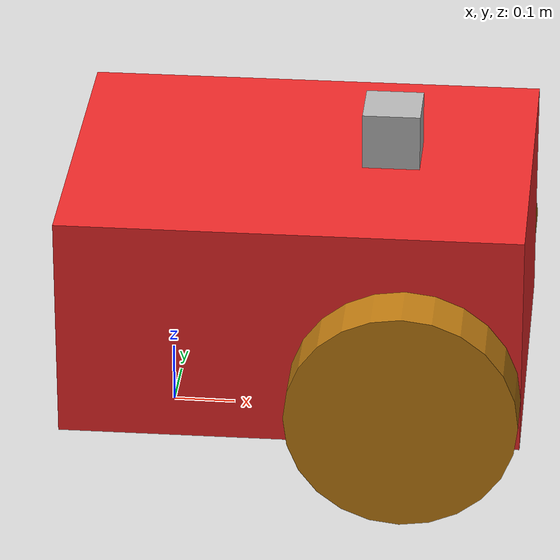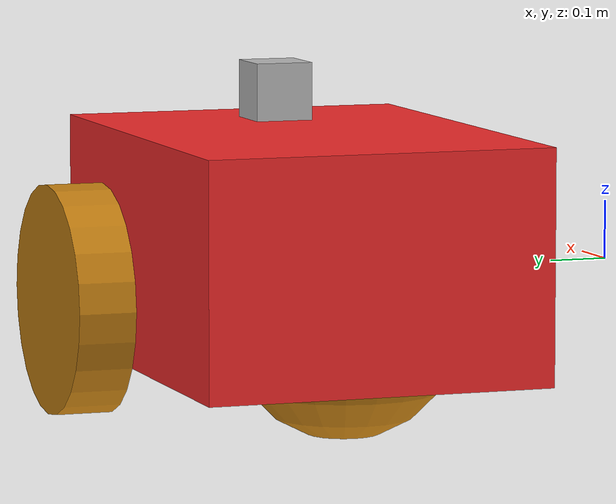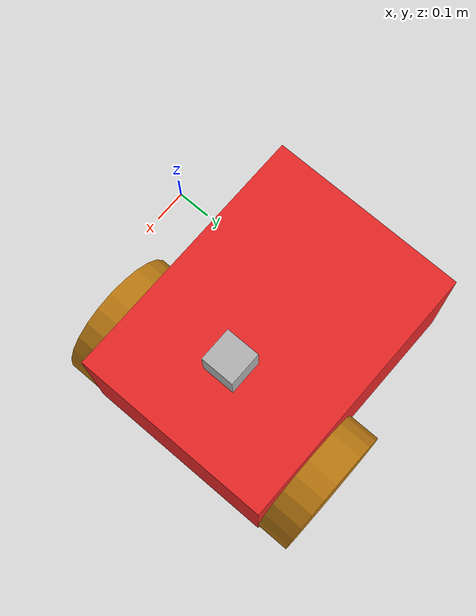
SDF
<?xml version='1.0'?>
<sdf version='1.6'>
  <model name='ugvtest'>
    <link name='link_0'>
      <inertial>
        <mass>1175</mass>
        <inertia>
          <ixx>195.833</ixx>
          <ixy>0</ixy>
          <ixz>0</ixz>
          <iyy>195.833</iyy>
          <iyz>0</iyz>
          <izz>195.833</izz>
        </inertia>
        <pose frame=''>0 0 0 0 -0 0</pose>
      </inertial>
      <pose frame=''>0.172741 0.484723 0.02 0 -0 0</pose>
      <gravity>1</gravity>
      <self_collide>0</self_collide>
      <kinematic>0</kinematic>
      <enable_wind>0</enable_wind>
      <visual name='visual'>
        <pose frame=''>0 0 0 0 -0 0</pose>
        <geometry>
          <box>
            <size>0.8 0.6 0.4</size>
          </box>
        </geometry>
        <material>
          <lighting>1</lighting>
          <script>
            <uri>file://media/materials/scripts/gazebo.material</uri>
            <name>Gazebo/Grey</name>
          </script>
          <shader type='pixel'>
            <normal_map>__default__</normal_map>
          </shader>
          <ambient>0.937 0.161 0.161 1</ambient>
          <diffuse>0.7 0.7 0.7 1</diffuse>
          <specular>0.01 0.01 0.01 1</specular>
          <emissive>0 0 0 1</emissive>
        </material>
        <transparency>0</transparency>
        <cast_shadows>1</cast_shadows>
      </visual>
      <collision name='collision'>
        <laser_retro>0</laser_retro>
        <max_contacts>10</max_contacts>
        <pose frame=''>0 0 0 0 -0 0</pose>
        <geometry>
          <box>
            <size>0.8 0.6 0.4</size>
          </box>
        </geometry>
        <surface>
          <friction>
            <ode>
              <mu>1</mu>
              <mu2>1</mu2>
              <fdir1>0 0 0</fdir1>
              <slip1>0</slip1>
              <slip2>0</slip2>
            </ode>
            <torsional>
              <coefficient>1</coefficient>
              <patch_radius>0</patch_radius>
              <surface_radius>0</surface_radius>
              <use_patch_radius>1</use_patch_radius>
              <ode>
                <slip>0</slip>
              </ode>
            </torsional>
          </friction>
          <bounce>
            <restitution_coefficient>0</restitution_coefficient>
            <threshold>1e+06</threshold>
          </bounce>
          <contact>
            <collide_without_contact>0</collide_without_contact>
            <collide_without_contact_bitmask>1</collide_without_contact_bitmask>
            <collide_bitmask>1</collide_bitmask>
            <ode>
              <soft_cfm>0</soft_cfm>
              <soft_erp>0.2</soft_erp>
              <kp>1e+13</kp>
              <kd>1</kd>
              <max_vel>0.01</max_vel>
              <min_depth>0</min_depth>
            </ode>
            <bullet>
              <split_impulse>1</split_impulse>
              <split_impulse_penetration_threshold>-0.01</split_impulse_penetration_threshold>
              <soft_cfm>0</soft_cfm>
              <soft_erp>0.2</soft_erp>
              <kp>1e+13</kp>
              <kd>1</kd>
            </bullet>
          </contact>
        </surface>
      </collision>
    </link>
    <link name='link_1'>
      <inertial>
        <mass>1</mass>
        <inertia>
          <ixx>0.145833</ixx>
          <ixy>0</ixy>
          <ixz>0</ixz>
          <iyy>0.145833</iyy>
          <iyz>0</iyz>
          <izz>0.125</izz>
        </inertia>
        <pose frame=''>0 0 0 0 -0 0</pose>
      </inertial>
      <pose frame=''>0.372741 0.134704 -0.08 1.5707 -0 0</pose>
      <gravity>1</gravity>
      <self_collide>0</self_collide>
      <kinematic>0</kinematic>
      <enable_wind>0</enable_wind>
      <visual name='visual'>
        <pose frame=''>0 0 0 0 -0 0</pose>
        <geometry>
          <cylinder>
            <radius>0.2</radius>
            <length>0.1</length>
          </cylinder>
        </geometry>
        <material>
          <lighting>1</lighting>
          <script>
            <uri>file://media/materials/scripts/gazebo.material</uri>
            <name>Gazebo/Grey</name>
          </script>
          <shader type='pixel'>
            <normal_map>__default__</normal_map>
          </shader>
          <ambient>0.757 0.49 0.067 1</ambient>
          <diffuse>0.7 0.7 0.7 1</diffuse>
          <specular>0.01 0.01 0.01 1</specular>
          <emissive>0 0 0 1</emissive>
        </material>
        <transparency>0</transparency>
        <cast_shadows>1</cast_shadows>
      </visual>
      <collision name='collision'>
        <laser_retro>0</laser_retro>
        <max_contacts>10</max_contacts>
        <pose frame=''>0 0 0 0 -0 0</pose>
        <geometry>
          <cylinder>
            <radius>0.2</radius>
            <length>0.1</length>
          </cylinder>
        </geometry>
        <surface>
          <friction>
            <ode>
              <mu>1</mu>
              <mu2>1</mu2>
              <fdir1>0 0 0</fdir1>
              <slip1>0</slip1>
              <slip2>0</slip2>
            </ode>
            <torsional>
              <coefficient>1</coefficient>
              <patch_radius>0</patch_radius>
              <surface_radius>0</surface_radius>
              <use_patch_radius>1</use_patch_radius>
              <ode>
                <slip>0</slip>
              </ode>
            </torsional>
          </friction>
          <bounce>
            <restitution_coefficient>0</restitution_coefficient>
            <threshold>1e+06</threshold>
          </bounce>
          <contact>
            <collide_without_contact>0</collide_without_contact>
            <collide_without_contact_bitmask>1</collide_without_contact_bitmask>
            <collide_bitmask>1</collide_bitmask>
            <ode>
              <soft_cfm>0</soft_cfm>
              <soft_erp>0.2</soft_erp>
              <kp>1e+13</kp>
              <kd>1</kd>
              <max_vel>0.01</max_vel>
              <min_depth>0</min_depth>
            </ode>
            <bullet>
              <split_impulse>1</split_impulse>
              <split_impulse_penetration_threshold>-0.01</split_impulse_penetration_threshold>
              <soft_cfm>0</soft_cfm>
              <soft_erp>0.2</soft_erp>
              <kp>1e+13</kp>
              <kd>1</kd>
            </bullet>
          </contact>
        </surface>
      </collision>
    </link>
    <link name='link_1_clone_0'>
      <inertial>
        <mass>1</mass>
        <inertia>
          <ixx>0.145833</ixx>
          <ixy>0</ixy>
          <ixz>0</ixz>
          <iyy>0.145833</iyy>
          <iyz>0</iyz>
          <izz>0.125</izz>
        </inertia>
        <pose frame=''>0 0 0 0 -0 0</pose>
      </inertial>
      <pose frame=''>0.372741 0.834742 -0.08 1.5707 -0 0</pose>
      <gravity>1</gravity>
      <self_collide>0</self_collide>
      <kinematic>0</kinematic>
      <enable_wind>0</enable_wind>
      <visual name='visual'>
        <pose frame=''>0 0 0 0 -0 0</pose>
        <geometry>
          <cylinder>
            <radius>0.2</radius>
            <length>0.1</length>
          </cylinder>
        </geometry>
        <material>
          <lighting>1</lighting>
          <script>
            <uri>file://media/materials/scripts/gazebo.material</uri>
            <name>Gazebo/Grey</name>
          </script>
          <shader type='pixel'>
            <normal_map>__default__</normal_map>
          </shader>
          <ambient>0.757 0.49 0.067 1</ambient>
          <diffuse>0.7 0.7 0.7 1</diffuse>
          <specular>0.01 0.01 0.01 1</specular>
          <emissive>0 0 0 1</emissive>
        </material>
        <transparency>0</transparency>
        <cast_shadows>1</cast_shadows>
      </visual>
      <collision name='collision'>
        <laser_retro>0</laser_retro>
        <max_contacts>10</max_contacts>
        <pose frame=''>0 0 0 0 -0 0</pose>
        <geometry>
          <cylinder>
            <radius>0.2</radius>
            <length>0.1</length>
          </cylinder>
        </geometry>
        <surface>
          <friction>
            <ode>
              <mu>1</mu>
              <mu2>1</mu2>
              <fdir1>0 0 0</fdir1>
              <slip1>0</slip1>
              <slip2>0</slip2>
            </ode>
            <torsional>
              <coefficient>1</coefficient>
              <patch_radius>0</patch_radius>
              <surface_radius>0</surface_radius>
              <use_patch_radius>1</use_patch_radius>
              <ode>
                <slip>0</slip>
              </ode>
            </torsional>
          </friction>
          <bounce>
            <restitution_coefficient>0</restitution_coefficient>
            <threshold>1e+06</threshold>
          </bounce>
          <contact>
            <collide_without_contact>0</collide_without_contact>
            <collide_without_contact_bitmask>1</collide_without_contact_bitmask>
            <collide_bitmask>1</collide_bitmask>
            <ode>
              <soft_cfm>0</soft_cfm>
              <soft_erp>0.2</soft_erp>
              <kp>1e+13</kp>
              <kd>1</kd>
              <max_vel>0.01</max_vel>
              <min_depth>0</min_depth>
            </ode>
            <bullet>
              <split_impulse>1</split_impulse>
              <split_impulse_penetration_threshold>-0.01</split_impulse_penetration_threshold>
              <soft_cfm>0</soft_cfm>
              <soft_erp>0.2</soft_erp>
              <kp>1e+13</kp>
              <kd>1</kd>
            </bullet>
          </contact>
        </surface>
      </collision>
    </link>
    <link name='link_2'>
      <inertial>
        <mass>615.229</mass>
        <inertia>
          <ixx>61.5229</ixx>
          <ixy>0</ixy>
          <ixz>0</ixz>
          <iyy>61.5229</iyy>
          <iyz>0</iyz>
          <izz>61.5229</izz>
        </inertia>
        <pose frame=''>0 0 0 0 -0 0</pose>
      </inertial>
      <pose frame=''>-0.027259 0.484723 -0.08 0 -0 0</pose>
      <gravity>1</gravity>
      <self_collide>0</self_collide>
      <kinematic>0</kinematic>
      <enable_wind>0</enable_wind>
      <visual name='visual'>
        <pose frame=''>0 0 0 0 -0 0</pose>
        <geometry>
          <sphere>
            <radius>0.2</radius>
          </sphere>
        </geometry>
        <material>
          <lighting>1</lighting>
          <script>
            <uri>file://media/materials/scripts/gazebo.material</uri>
            <name>Gazebo/Grey</name>
          </script>
          <shader type='pixel'>
            <normal_map>__default__</normal_map>
          </shader>
          <ambient>0.757 0.49 0.067 1</ambient>
          <diffuse>0.7 0.7 0.7 1</diffuse>
          <specular>0.01 0.01 0.01 1</specular>
          <emissive>0 0 0 1</emissive>
        </material>
        <transparency>0</transparency>
        <cast_shadows>1</cast_shadows>
      </visual>
      <collision name='collision'>
        <laser_retro>0</laser_retro>
        <max_contacts>10</max_contacts>
        <pose frame=''>0 0 0 0 -0 0</pose>
        <geometry>
          <sphere>
            <radius>0.2</radius>
          </sphere>
        </geometry>
        <surface>
          <friction>
            <ode>
              <mu>1</mu>
              <mu2>1</mu2>
              <fdir1>0 0 0</fdir1>
              <slip1>0</slip1>
              <slip2>0</slip2>
            </ode>
            <torsional>
              <coefficient>1</coefficient>
              <patch_radius>0</patch_radius>
              <surface_radius>0</surface_radius>
              <use_patch_radius>1</use_patch_radius>
              <ode>
                <slip>0</slip>
              </ode>
            </torsional>
          </friction>
          <bounce>
            <restitution_coefficient>0</restitution_coefficient>
            <threshold>1e+06</threshold>
          </bounce>
          <contact>
            <collide_without_contact>0</collide_without_contact>
            <collide_without_contact_bitmask>1</collide_without_contact_bitmask>
            <collide_bitmask>1</collide_bitmask>
            <ode>
              <soft_cfm>0</soft_cfm>
              <soft_erp>0.2</soft_erp>
              <kp>1e+13</kp>
              <kd>1</kd>
              <max_vel>0.01</max_vel>
              <min_depth>0</min_depth>
            </ode>
            <bullet>
              <split_impulse>1</split_impulse>
              <split_impulse_penetration_threshold>-0.01</split_impulse_penetration_threshold>
              <soft_cfm>0</soft_cfm>
              <soft_erp>0.2</soft_erp>
              <kp>1e+13</kp>
              <kd>1</kd>
            </bullet>
          </contact>
        </surface>
      </collision>
    </link>
    <model name='depth_camera'>
      <link name='link'>
        <pose frame=''>0 0 0.05 0 -0 0</pose>
        <inertial>
          <mass>0.1</mass>
          <inertia>
            <ixx>0.000166667</ixx>
            <iyy>0.000166667</iyy>
            <izz>0.000166667</izz>
            <ixy>0</ixy>
            <ixz>0</ixz>
            <iyz>0</iyz>
          </inertia>
        </inertial>
        <collision name='collision'>
          <geometry>
            <box>
              <size>0.1 0.1 0.1</size>
            </box>
          </geometry>
        </collision>
        <visual name='visual'>
          <geometry>
            <box>
              <size>0.1 0.1 0.1</size>
            </box>
          </geometry>
        </visual>
        <sensor name='camera' type='depth'>
          <camera name='__default__'>
            <horizontal_fov>1.047</horizontal_fov>
            <image>
              <width>320</width>
              <height>240</height>
            </image>
            <clip>
              <near>0.1</near>
              <far>100</far>
            </clip>
          </camera>
          <always_on>1</always_on>
          <update_rate>30</update_rate>
          <visualize>1</visualize>
        </sensor>
      </link>
      <pose frame=''>0.329638 0.483536 0.226124 0 -0 0</pose>
    </model>
    <joint name='link_0_JOINT_0_0' type='fixed'>
      <parent>link_0</parent>
      <child>depth_camera::link</child>
      <pose frame=''>0 0 0 0 -0 0</pose>
      <physics>
        <ode>
          <limit>
            <cfm>0</cfm>
            <erp>0.2</erp>
          </limit>
          <suspension>
            <cfm>0</cfm>
            <erp>0.2</erp>
          </suspension>
        </ode>
      </physics>
    </joint>
    <joint name='link_0_JOINT_0' type='revolute'>
      <parent>link_0</parent>
      <child>link_1</child>
      <pose frame=''>0 0 0 0 -0 0</pose>
      <axis>
        <xyz>0 0 -1</xyz>
        <use_parent_model_frame>0</use_parent_model_frame>
        <limit>
          <lower>-1.79769e+308</lower>
          <upper>1.79769e+308</upper>
          <effort>-1</effort>
          <velocity>-1</velocity>
        </limit>
        <dynamics>
          <spring_reference>0</spring_reference>
          <spring_stiffness>0</spring_stiffness>
          <damping>0</damping>
          <friction>0</friction>
        </dynamics>
      </axis>
      <physics>
        <ode>
          <limit>
            <cfm>0</cfm>
            <erp>0.2</erp>
          </limit>
          <suspension>
            <cfm>0</cfm>
            <erp>0.2</erp>
          </suspension>
        </ode>
      </physics>
    </joint>
    <joint name='link_0_JOINT_1' type='revolute'>
      <parent>link_0</parent>
      <child>link_1_clone_0</child>
      <pose frame=''>0 0 0 0 -0.03 0</pose>
      <axis>
        <xyz>0 0 1</xyz>
        <use_parent_model_frame>0</use_parent_model_frame>
        <limit>
          <lower>-1.79769e+308</lower>
          <upper>1.79769e+308</upper>
          <effort>-1</effort>
          <velocity>-1</velocity>
        </limit>
        <dynamics>
          <spring_reference>0</spring_reference>
          <spring_stiffness>0</spring_stiffness>
          <damping>0</damping>
          <friction>0</friction>
        </dynamics>
      </axis>
      <physics>
        <ode>
          <limit>
            <cfm>0</cfm>
            <erp>0.2</erp>
          </limit>
          <suspension>
            <cfm>0</cfm>
            <erp>0.2</erp>
          </suspension>
        </ode>
      </physics>
    </joint>
    <joint name='link_0_JOINT_2' type='ball'>
      <parent>link_0</parent>
      <child>link_2</child>
      <pose frame=''>0 0 0 0 -0 0</pose>
      <physics>
        <ode>
          <limit>
            <cfm>0</cfm>
            <erp>0.2</erp>
          </limit>
          <suspension>
            <cfm>0</cfm>
            <erp>0.2</erp>
          </suspension>
        </ode>
      </physics>
    </joint>
    <static>0</static>
    <allow_auto_disable>1</allow_auto_disable>
    <plugin name='follower' filename='libFollowerPlugin.so'/>
  </model>
</sdf>
